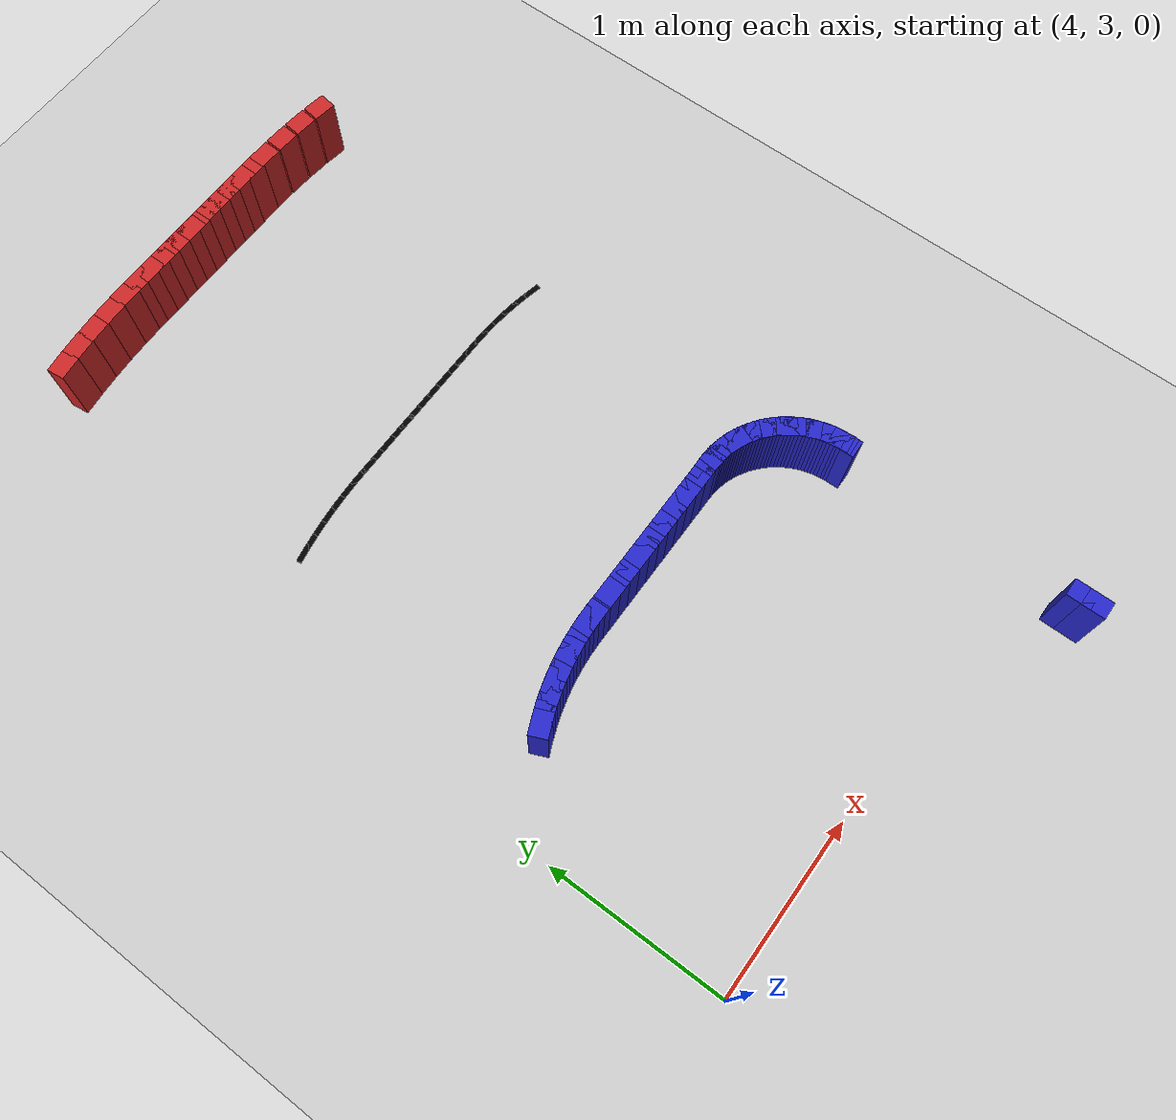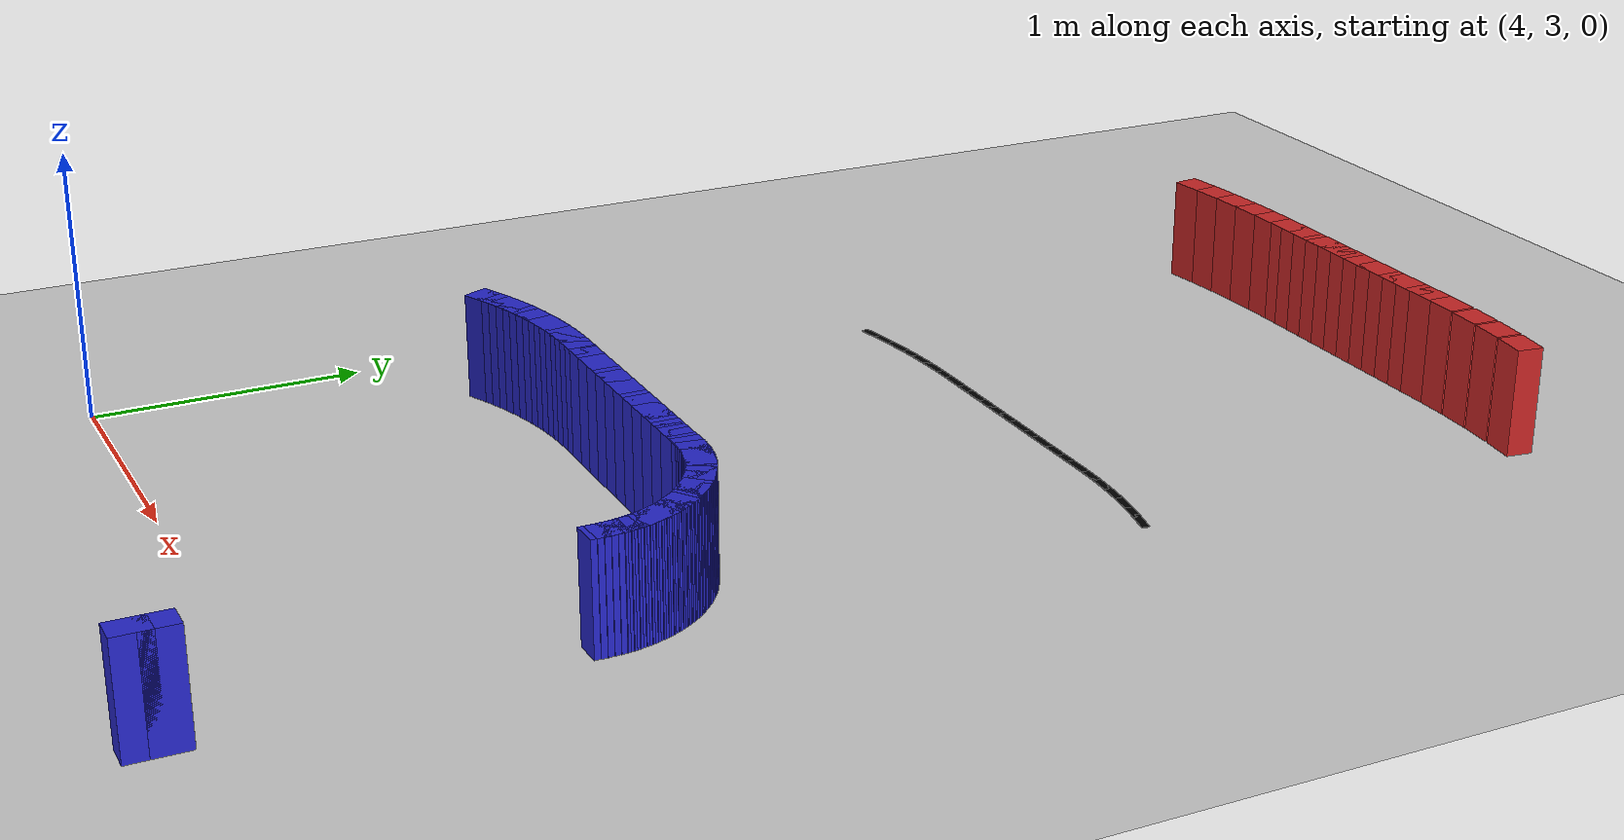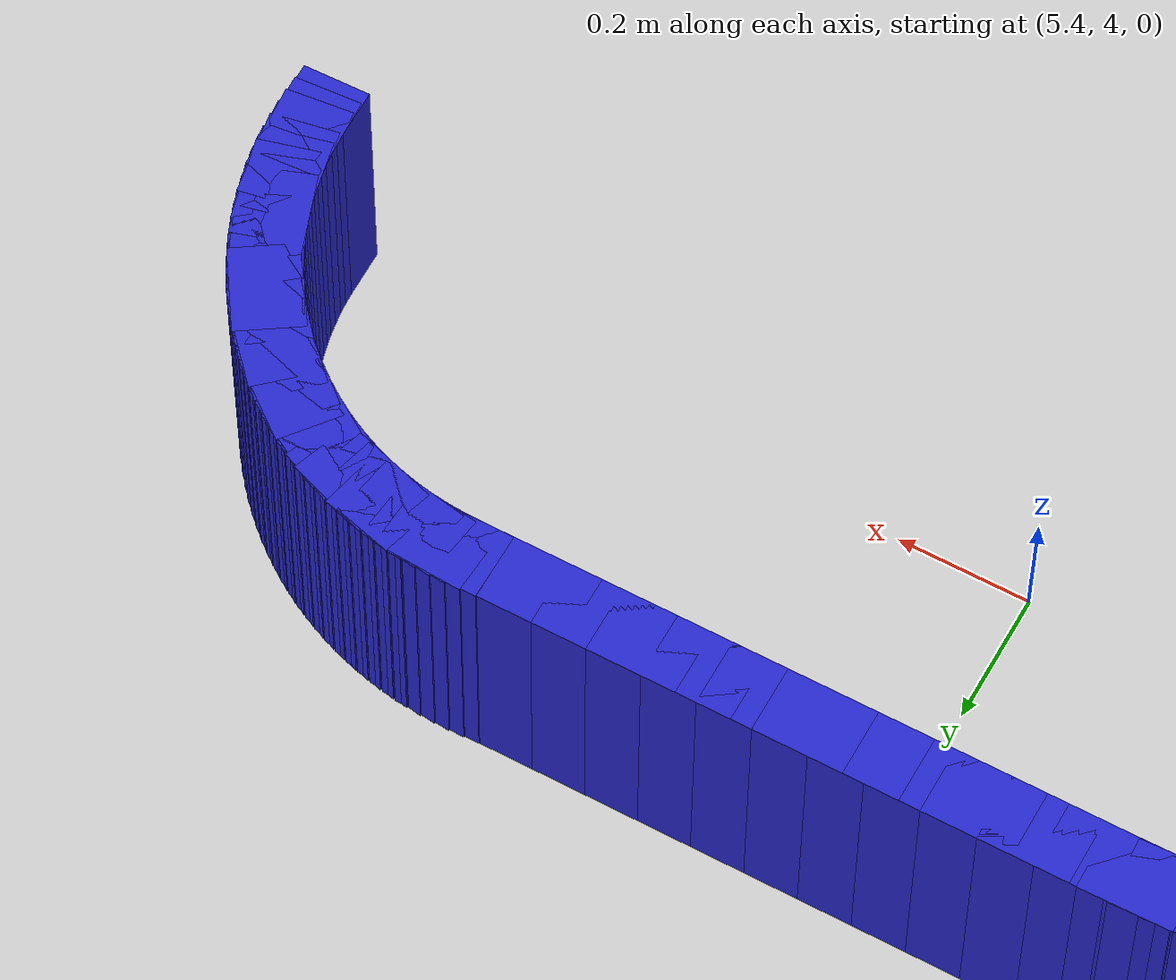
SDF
<sdf version="1.6">
 <world name="new_race_track">
  <include><uri>model://ground_plane</uri></include>
  <include><uri>model://sun</uri></include>
  <model name="iw_478">
   <static>true</static>
   <pose>6.5000 2.6000 0.200 0 0 1.5708</pose>
   <link name="l">
    <collision name="c"><geometry><box><size>0.1300 0.1 0.4</size></box></geometry></collision>
    <visual name="v">
     <geometry><box><size>0.1300 0.1 0.4</size></box></geometry>
     <material><ambient>0.15 0.15 0.8 1</ambient><diffuse>0.15 0.15 0.8 1</diffuse></material>
    </visual>
   </link>
  </model>
  <model name="iw_479">
   <static>true</static>
   <pose>6.5000 2.6800 0.200 0 0 1.5708</pose>
   <link name="l">
    <collision name="c"><geometry><box><size>0.1300 0.1 0.4</size></box></geometry></collision>
    <visual name="v">
     <geometry><box><size>0.1300 0.1 0.4</size></box></geometry>
     <material><ambient>0.15 0.15 0.8 1</ambient><diffuse>0.15 0.15 0.8 1</diffuse></material>
    </visual>
   </link>
  </model>
  <model name="iw_496">
   <static>true</static>
   <pose>6.4995 4.0101 0.200 0 0 1.5909</pose>
   <link name="l">
    <collision name="c"><geometry><box><size>0.1305 0.1 0.4</size></box></geometry></collision>
    <visual name="v">
     <geometry><box><size>0.1305 0.1 0.4</size></box></geometry>
     <material><ambient>0.15 0.15 0.8 1</ambient><diffuse>0.15 0.15 0.8 1</diffuse></material>
    </visual>
   </link>
  </model>
  <model name="iw_497">
   <static>true</static>
   <pose>6.4987 4.0302 0.200 0 0 1.6312</pose>
   <link name="l">
    <collision name="c"><geometry><box><size>0.1305 0.1 0.4</size></box></geometry></collision>
    <visual name="v">
     <geometry><box><size>0.1305 0.1 0.4</size></box></geometry>
     <material><ambient>0.15 0.15 0.8 1</ambient><diffuse>0.15 0.15 0.8 1</diffuse></material>
    </visual>
   </link>
  </model>
  <model name="iw_498">
   <static>true</static>
   <pose>6.4971 4.0502 0.200 0 0 1.6715</pose>
   <link name="l">
    <collision name="c"><geometry><box><size>0.1305 0.1 0.4</size></box></geometry></collision>
    <visual name="v">
     <geometry><box><size>0.1305 0.1 0.4</size></box></geometry>
     <material><ambient>0.15 0.15 0.8 1</ambient><diffuse>0.15 0.15 0.8 1</diffuse></material>
    </visual>
   </link>
  </model>
  <model name="iw_499">
   <static>true</static>
   <pose>6.4946 4.0702 0.200 0 0 1.7118</pose>
   <link name="l">
    <collision name="c"><geometry><box><size>0.1305 0.1 0.4</size></box></geometry></collision>
    <visual name="v">
     <geometry><box><size>0.1305 0.1 0.4</size></box></geometry>
     <material><ambient>0.15 0.15 0.8 1</ambient><diffuse>0.15 0.15 0.8 1</diffuse></material>
    </visual>
   </link>
  </model>
  <model name="iw_500">
   <static>true</static>
   <pose>6.4914 4.0901 0.200 0 0 1.7520</pose>
   <link name="l">
    <collision name="c"><geometry><box><size>0.1305 0.1 0.4</size></box></geometry></collision>
    <visual name="v">
     <geometry><box><size>0.1305 0.1 0.4</size></box></geometry>
     <material><ambient>0.15 0.15 0.8 1</ambient><diffuse>0.15 0.15 0.8 1</diffuse></material>
    </visual>
   </link>
  </model>
  <model name="iw_501">
   <static>true</static>
   <pose>6.4874 4.1098 0.200 0 0 1.7923</pose>
   <link name="l">
    <collision name="c"><geometry><box><size>0.1305 0.1 0.4</size></box></geometry></collision>
    <visual name="v">
     <geometry><box><size>0.1305 0.1 0.4</size></box></geometry>
     <material><ambient>0.15 0.15 0.8 1</ambient><diffuse>0.15 0.15 0.8 1</diffuse></material>
    </visual>
   </link>
  </model>
  <model name="iw_502">
   <static>true</static>
   <pose>6.4826 4.1293 0.200 0 0 1.8326</pose>
   <link name="l">
    <collision name="c"><geometry><box><size>0.1305 0.1 0.4</size></box></geometry></collision>
    <visual name="v">
     <geometry><box><size>0.1305 0.1 0.4</size></box></geometry>
     <material><ambient>0.15 0.15 0.8 1</ambient><diffuse>0.15 0.15 0.8 1</diffuse></material>
    </visual>
   </link>
  </model>
  <model name="iw_503">
   <static>true</static>
   <pose>6.4770 4.1486 0.200 0 0 1.8729</pose>
   <link name="l">
    <collision name="c"><geometry><box><size>0.1305 0.1 0.4</size></box></geometry></collision>
    <visual name="v">
     <geometry><box><size>0.1305 0.1 0.4</size></box></geometry>
     <material><ambient>0.15 0.15 0.8 1</ambient><diffuse>0.15 0.15 0.8 1</diffuse></material>
    </visual>
   </link>
  </model>
  <model name="iw_504">
   <static>true</static>
   <pose>6.4706 4.1677 0.200 0 0 1.9131</pose>
   <link name="l">
    <collision name="c"><geometry><box><size>0.1305 0.1 0.4</size></box></geometry></collision>
    <visual name="v">
     <geometry><box><size>0.1305 0.1 0.4</size></box></geometry>
     <material><ambient>0.15 0.15 0.8 1</ambient><diffuse>0.15 0.15 0.8 1</diffuse></material>
    </visual>
   </link>
  </model>
  <model name="iw_505">
   <static>true</static>
   <pose>6.4635 4.1865 0.200 0 0 1.9534</pose>
   <link name="l">
    <collision name="c"><geometry><box><size>0.1305 0.1 0.4</size></box></geometry></collision>
    <visual name="v">
     <geometry><box><size>0.1305 0.1 0.4</size></box></geometry>
     <material><ambient>0.15 0.15 0.8 1</ambient><diffuse>0.15 0.15 0.8 1</diffuse></material>
    </visual>
   </link>
  </model>
  <model name="iw_506">
   <static>true</static>
   <pose>6.4556 4.2050 0.200 0 0 1.9937</pose>
   <link name="l">
    <collision name="c"><geometry><box><size>0.1305 0.1 0.4</size></box></geometry></collision>
    <visual name="v">
     <geometry><box><size>0.1305 0.1 0.4</size></box></geometry>
     <material><ambient>0.15 0.15 0.8 1</ambient><diffuse>0.15 0.15 0.8 1</diffuse></material>
    </visual>
   </link>
  </model>
  <model name="iw_507">
   <static>true</static>
   <pose>6.4470 4.2232 0.200 0 0 2.0340</pose>
   <link name="l">
    <collision name="c"><geometry><box><size>0.1305 0.1 0.4</size></box></geometry></collision>
    <visual name="v">
     <geometry><box><size>0.1305 0.1 0.4</size></box></geometry>
     <material><ambient>0.15 0.15 0.8 1</ambient><diffuse>0.15 0.15 0.8 1</diffuse></material>
    </visual>
   </link>
  </model>
  <model name="iw_508">
   <static>true</static>
   <pose>6.4376 4.2410 0.200 0 0 2.0743</pose>
   <link name="l">
    <collision name="c"><geometry><box><size>0.1305 0.1 0.4</size></box></geometry></collision>
    <visual name="v">
     <geometry><box><size>0.1305 0.1 0.4</size></box></geometry>
     <material><ambient>0.15 0.15 0.8 1</ambient><diffuse>0.15 0.15 0.8 1</diffuse></material>
    </visual>
   </link>
  </model>
  <model name="iw_509">
   <static>true</static>
   <pose>6.4275 4.2585 0.200 0 0 2.1145</pose>
   <link name="l">
    <collision name="c"><geometry><box><size>0.1305 0.1 0.4</size></box></geometry></collision>
    <visual name="v">
     <geometry><box><size>0.1305 0.1 0.4</size></box></geometry>
     <material><ambient>0.15 0.15 0.8 1</ambient><diffuse>0.15 0.15 0.8 1</diffuse></material>
    </visual>
   </link>
  </model>
  <model name="iw_510">
   <static>true</static>
   <pose>6.4168 4.2755 0.200 0 0 2.1548</pose>
   <link name="l">
    <collision name="c"><geometry><box><size>0.1305 0.1 0.4</size></box></geometry></collision>
    <visual name="v">
     <geometry><box><size>0.1305 0.1 0.4</size></box></geometry>
     <material><ambient>0.15 0.15 0.8 1</ambient><diffuse>0.15 0.15 0.8 1</diffuse></material>
    </visual>
   </link>
  </model>
  <model name="iw_511">
   <static>true</static>
   <pose>6.4054 4.2920 0.200 0 0 2.1951</pose>
   <link name="l">
    <collision name="c"><geometry><box><size>0.1305 0.1 0.4</size></box></geometry></collision>
    <visual name="v">
     <geometry><box><size>0.1305 0.1 0.4</size></box></geometry>
     <material><ambient>0.15 0.15 0.8 1</ambient><diffuse>0.15 0.15 0.8 1</diffuse></material>
    </visual>
   </link>
  </model>
  <model name="iw_512">
   <static>true</static>
   <pose>6.3933 4.3081 0.200 0 0 2.2354</pose>
   <link name="l">
    <collision name="c"><geometry><box><size>0.1305 0.1 0.4</size></box></geometry></collision>
    <visual name="v">
     <geometry><box><size>0.1305 0.1 0.4</size></box></geometry>
     <material><ambient>0.15 0.15 0.8 1</ambient><diffuse>0.15 0.15 0.8 1</diffuse></material>
    </visual>
   </link>
  </model>
  <model name="iw_513">
   <static>true</static>
   <pose>6.3805 4.3237 0.200 0 0 2.2756</pose>
   <link name="l">
    <collision name="c"><geometry><box><size>0.1305 0.1 0.4</size></box></geometry></collision>
    <visual name="v">
     <geometry><box><size>0.1305 0.1 0.4</size></box></geometry>
     <material><ambient>0.15 0.15 0.8 1</ambient><diffuse>0.15 0.15 0.8 1</diffuse></material>
    </visual>
   </link>
  </model>
  <model name="iw_514">
   <static>true</static>
   <pose>6.3672 4.3388 0.200 0 0 2.3159</pose>
   <link name="l">
    <collision name="c"><geometry><box><size>0.1305 0.1 0.4</size></box></geometry></collision>
    <visual name="v">
     <geometry><box><size>0.1305 0.1 0.4</size></box></geometry>
     <material><ambient>0.15 0.15 0.8 1</ambient><diffuse>0.15 0.15 0.8 1</diffuse></material>
    </visual>
   </link>
  </model>
  <model name="iw_515">
   <static>true</static>
   <pose>6.3533 4.3533 0.200 0 0 2.3562</pose>
   <link name="l">
    <collision name="c"><geometry><box><size>0.1305 0.1 0.4</size></box></geometry></collision>
    <visual name="v">
     <geometry><box><size>0.1305 0.1 0.4</size></box></geometry>
     <material><ambient>0.15 0.15 0.8 1</ambient><diffuse>0.15 0.15 0.8 1</diffuse></material>
    </visual>
   </link>
  </model>
  <model name="iw_516">
   <static>true</static>
   <pose>6.3388 4.3672 0.200 0 0 2.3965</pose>
   <link name="l">
    <collision name="c"><geometry><box><size>0.1305 0.1 0.4</size></box></geometry></collision>
    <visual name="v">
     <geometry><box><size>0.1305 0.1 0.4</size></box></geometry>
     <material><ambient>0.15 0.15 0.8 1</ambient><diffuse>0.15 0.15 0.8 1</diffuse></material>
    </visual>
   </link>
  </model>
  <model name="iw_517">
   <static>true</static>
   <pose>6.3237 4.3805 0.200 0 0 2.4367</pose>
   <link name="l">
    <collision name="c"><geometry><box><size>0.1305 0.1 0.4</size></box></geometry></collision>
    <visual name="v">
     <geometry><box><size>0.1305 0.1 0.4</size></box></geometry>
     <material><ambient>0.15 0.15 0.8 1</ambient><diffuse>0.15 0.15 0.8 1</diffuse></material>
    </visual>
   </link>
  </model>
  <model name="iw_518">
   <static>true</static>
   <pose>6.3081 4.3933 0.200 0 0 2.4770</pose>
   <link name="l">
    <collision name="c"><geometry><box><size>0.1305 0.1 0.4</size></box></geometry></collision>
    <visual name="v">
     <geometry><box><size>0.1305 0.1 0.4</size></box></geometry>
     <material><ambient>0.15 0.15 0.8 1</ambient><diffuse>0.15 0.15 0.8 1</diffuse></material>
    </visual>
   </link>
  </model>
  <model name="iw_519">
   <static>true</static>
   <pose>6.2920 4.4054 0.200 0 0 2.5173</pose>
   <link name="l">
    <collision name="c"><geometry><box><size>0.1305 0.1 0.4</size></box></geometry></collision>
    <visual name="v">
     <geometry><box><size>0.1305 0.1 0.4</size></box></geometry>
     <material><ambient>0.15 0.15 0.8 1</ambient><diffuse>0.15 0.15 0.8 1</diffuse></material>
    </visual>
   </link>
  </model>
  <model name="iw_520">
   <static>true</static>
   <pose>6.2755 4.4168 0.200 0 0 2.5576</pose>
   <link name="l">
    <collision name="c"><geometry><box><size>0.1305 0.1 0.4</size></box></geometry></collision>
    <visual name="v">
     <geometry><box><size>0.1305 0.1 0.4</size></box></geometry>
     <material><ambient>0.15 0.15 0.8 1</ambient><diffuse>0.15 0.15 0.8 1</diffuse></material>
    </visual>
   </link>
  </model>
  <model name="iw_521">
   <static>true</static>
   <pose>6.2585 4.4275 0.200 0 0 2.5979</pose>
   <link name="l">
    <collision name="c"><geometry><box><size>0.1305 0.1 0.4</size></box></geometry></collision>
    <visual name="v">
     <geometry><box><size>0.1305 0.1 0.4</size></box></geometry>
     <material><ambient>0.15 0.15 0.8 1</ambient><diffuse>0.15 0.15 0.8 1</diffuse></material>
    </visual>
   </link>
  </model>
  <model name="iw_522">
   <static>true</static>
   <pose>6.2410 4.4376 0.200 0 0 2.6381</pose>
   <link name="l">
    <collision name="c"><geometry><box><size>0.1305 0.1 0.4</size></box></geometry></collision>
    <visual name="v">
     <geometry><box><size>0.1305 0.1 0.4</size></box></geometry>
     <material><ambient>0.15 0.15 0.8 1</ambient><diffuse>0.15 0.15 0.8 1</diffuse></material>
    </visual>
   </link>
  </model>
  <model name="iw_523">
   <static>true</static>
   <pose>6.2232 4.4470 0.200 0 0 2.6784</pose>
   <link name="l">
    <collision name="c"><geometry><box><size>0.1305 0.1 0.4</size></box></geometry></collision>
    <visual name="v">
     <geometry><box><size>0.1305 0.1 0.4</size></box></geometry>
     <material><ambient>0.15 0.15 0.8 1</ambient><diffuse>0.15 0.15 0.8 1</diffuse></material>
    </visual>
   </link>
  </model>
  <model name="iw_524">
   <static>true</static>
   <pose>6.2050 4.4556 0.200 0 0 2.7187</pose>
   <link name="l">
    <collision name="c"><geometry><box><size>0.1305 0.1 0.4</size></box></geometry></collision>
    <visual name="v">
     <geometry><box><size>0.1305 0.1 0.4</size></box></geometry>
     <material><ambient>0.15 0.15 0.8 1</ambient><diffuse>0.15 0.15 0.8 1</diffuse></material>
    </visual>
   </link>
  </model>
  <model name="iw_525">
   <static>true</static>
   <pose>6.1865 4.4635 0.200 0 0 2.7590</pose>
   <link name="l">
    <collision name="c"><geometry><box><size>0.1305 0.1 0.4</size></box></geometry></collision>
    <visual name="v">
     <geometry><box><size>0.1305 0.1 0.4</size></box></geometry>
     <material><ambient>0.15 0.15 0.8 1</ambient><diffuse>0.15 0.15 0.8 1</diffuse></material>
    </visual>
   </link>
  </model>
  <model name="iw_526">
   <static>true</static>
   <pose>6.1677 4.4706 0.200 0 0 2.7992</pose>
   <link name="l">
    <collision name="c"><geometry><box><size>0.1305 0.1 0.4</size></box></geometry></collision>
    <visual name="v">
     <geometry><box><size>0.1305 0.1 0.4</size></box></geometry>
     <material><ambient>0.15 0.15 0.8 1</ambient><diffuse>0.15 0.15 0.8 1</diffuse></material>
    </visual>
   </link>
  </model>
  <model name="iw_527">
   <static>true</static>
   <pose>6.1486 4.4770 0.200 0 0 2.8395</pose>
   <link name="l">
    <collision name="c"><geometry><box><size>0.1305 0.1 0.4</size></box></geometry></collision>
    <visual name="v">
     <geometry><box><size>0.1305 0.1 0.4</size></box></geometry>
     <material><ambient>0.15 0.15 0.8 1</ambient><diffuse>0.15 0.15 0.8 1</diffuse></material>
    </visual>
   </link>
  </model>
  <model name="iw_528">
   <static>true</static>
   <pose>6.1293 4.4826 0.200 0 0 2.8798</pose>
   <link name="l">
    <collision name="c"><geometry><box><size>0.1305 0.1 0.4</size></box></geometry></collision>
    <visual name="v">
     <geometry><box><size>0.1305 0.1 0.4</size></box></geometry>
     <material><ambient>0.15 0.15 0.8 1</ambient><diffuse>0.15 0.15 0.8 1</diffuse></material>
    </visual>
   </link>
  </model>
  <model name="iw_529">
   <static>true</static>
   <pose>6.1098 4.4874 0.200 0 0 2.9201</pose>
   <link name="l">
    <collision name="c"><geometry><box><size>0.1305 0.1 0.4</size></box></geometry></collision>
    <visual name="v">
     <geometry><box><size>0.1305 0.1 0.4</size></box></geometry>
     <material><ambient>0.15 0.15 0.8 1</ambient><diffuse>0.15 0.15 0.8 1</diffuse></material>
    </visual>
   </link>
  </model>
  <model name="iw_530">
   <static>true</static>
   <pose>6.0901 4.4914 0.200 0 0 2.9603</pose>
   <link name="l">
    <collision name="c"><geometry><box><size>0.1305 0.1 0.4</size></box></geometry></collision>
    <visual name="v">
     <geometry><box><size>0.1305 0.1 0.4</size></box></geometry>
     <material><ambient>0.15 0.15 0.8 1</ambient><diffuse>0.15 0.15 0.8 1</diffuse></material>
    </visual>
   </link>
  </model>
  <model name="iw_531">
   <static>true</static>
   <pose>6.0702 4.4946 0.200 0 0 3.0006</pose>
   <link name="l">
    <collision name="c"><geometry><box><size>0.1305 0.1 0.4</size></box></geometry></collision>
    <visual name="v">
     <geometry><box><size>0.1305 0.1 0.4</size></box></geometry>
     <material><ambient>0.15 0.15 0.8 1</ambient><diffuse>0.15 0.15 0.8 1</diffuse></material>
    </visual>
   </link>
  </model>
  <model name="iw_532">
   <static>true</static>
   <pose>6.0502 4.4971 0.200 0 0 3.0409</pose>
   <link name="l">
    <collision name="c"><geometry><box><size>0.1305 0.1 0.4</size></box></geometry></collision>
    <visual name="v">
     <geometry><box><size>0.1305 0.1 0.4</size></box></geometry>
     <material><ambient>0.15 0.15 0.8 1</ambient><diffuse>0.15 0.15 0.8 1</diffuse></material>
    </visual>
   </link>
  </model>
  <model name="iw_533">
   <static>true</static>
   <pose>6.0302 4.4987 0.200 0 0 3.0812</pose>
   <link name="l">
    <collision name="c"><geometry><box><size>0.1305 0.1 0.4</size></box></geometry></collision>
    <visual name="v">
     <geometry><box><size>0.1305 0.1 0.4</size></box></geometry>
     <material><ambient>0.15 0.15 0.8 1</ambient><diffuse>0.15 0.15 0.8 1</diffuse></material>
    </visual>
   </link>
  </model>
  <model name="iw_534">
   <static>true</static>
   <pose>6.0101 4.4995 0.200 0 0 3.1215</pose>
   <link name="l">
    <collision name="c"><geometry><box><size>0.1305 0.1 0.4</size></box></geometry></collision>
    <visual name="v">
     <geometry><box><size>0.1305 0.1 0.4</size></box></geometry>
     <material><ambient>0.15 0.15 0.8 1</ambient><diffuse>0.15 0.15 0.8 1</diffuse></material>
    </visual>
   </link>
  </model>
  <model name="iw_535">
   <static>true</static>
   <pose>5.9600 4.5000 0.200 0 0 3.1416</pose>
   <link name="l">
    <collision name="c"><geometry><box><size>0.1300 0.1 0.4</size></box></geometry></collision>
    <visual name="v">
     <geometry><box><size>0.1300 0.1 0.4</size></box></geometry>
     <material><ambient>0.15 0.15 0.8 1</ambient><diffuse>0.15 0.15 0.8 1</diffuse></material>
    </visual>
   </link>
  </model>
  <model name="iw_536">
   <static>true</static>
   <pose>5.8800 4.5000 0.200 0 0 3.1416</pose>
   <link name="l">
    <collision name="c"><geometry><box><size>0.1300 0.1 0.4</size></box></geometry></collision>
    <visual name="v">
     <geometry><box><size>0.1300 0.1 0.4</size></box></geometry>
     <material><ambient>0.15 0.15 0.8 1</ambient><diffuse>0.15 0.15 0.8 1</diffuse></material>
    </visual>
   </link>
  </model>
  <model name="iw_537">
   <static>true</static>
   <pose>5.8000 4.5000 0.200 0 0 3.1416</pose>
   <link name="l">
    <collision name="c"><geometry><box><size>0.1300 0.1 0.4</size></box></geometry></collision>
    <visual name="v">
     <geometry><box><size>0.1300 0.1 0.4</size></box></geometry>
     <material><ambient>0.15 0.15 0.8 1</ambient><diffuse>0.15 0.15 0.8 1</diffuse></material>
    </visual>
   </link>
  </model>
  <model name="iw_538">
   <static>true</static>
   <pose>5.7200 4.5000 0.200 0 0 3.1416</pose>
   <link name="l">
    <collision name="c"><geometry><box><size>0.1300 0.1 0.4</size></box></geometry></collision>
    <visual name="v">
     <geometry><box><size>0.1300 0.1 0.4</size></box></geometry>
     <material><ambient>0.15 0.15 0.8 1</ambient><diffuse>0.15 0.15 0.8 1</diffuse></material>
    </visual>
   </link>
  </model>
  <model name="iw_539">
   <static>true</static>
   <pose>5.6400 4.5000 0.200 0 0 3.1416</pose>
   <link name="l">
    <collision name="c"><geometry><box><size>0.1300 0.1 0.4</size></box></geometry></collision>
    <visual name="v">
     <geometry><box><size>0.1300 0.1 0.4</size></box></geometry>
     <material><ambient>0.15 0.15 0.8 1</ambient><diffuse>0.15 0.15 0.8 1</diffuse></material>
    </visual>
   </link>
  </model>
  <model name="iw_540">
   <static>true</static>
   <pose>5.5600 4.5000 0.200 0 0 3.1416</pose>
   <link name="l">
    <collision name="c"><geometry><box><size>0.1300 0.1 0.4</size></box></geometry></collision>
    <visual name="v">
     <geometry><box><size>0.1300 0.1 0.4</size></box></geometry>
     <material><ambient>0.15 0.15 0.8 1</ambient><diffuse>0.15 0.15 0.8 1</diffuse></material>
    </visual>
   </link>
  </model>
  <model name="iw_541">
   <static>true</static>
   <pose>5.4800 4.5000 0.200 0 0 3.1416</pose>
   <link name="l">
    <collision name="c"><geometry><box><size>0.1300 0.1 0.4</size></box></geometry></collision>
    <visual name="v">
     <geometry><box><size>0.1300 0.1 0.4</size></box></geometry>
     <material><ambient>0.15 0.15 0.8 1</ambient><diffuse>0.15 0.15 0.8 1</diffuse></material>
    </visual>
   </link>
  </model>
  <model name="iw_542">
   <static>true</static>
   <pose>5.4000 4.5000 0.200 0 0 3.1416</pose>
   <link name="l">
    <collision name="c"><geometry><box><size>0.1300 0.1 0.4</size></box></geometry></collision>
    <visual name="v">
     <geometry><box><size>0.1300 0.1 0.4</size></box></geometry>
     <material><ambient>0.15 0.15 0.8 1</ambient><diffuse>0.15 0.15 0.8 1</diffuse></material>
    </visual>
   </link>
  </model>
  <model name="iw_543">
   <static>true</static>
   <pose>5.3200 4.5000 0.200 0 0 3.1416</pose>
   <link name="l">
    <collision name="c"><geometry><box><size>0.1300 0.1 0.4</size></box></geometry></collision>
    <visual name="v">
     <geometry><box><size>0.1300 0.1 0.4</size></box></geometry>
     <material><ambient>0.15 0.15 0.8 1</ambient><diffuse>0.15 0.15 0.8 1</diffuse></material>
    </visual>
   </link>
  </model>
  <model name="iw_544">
   <static>true</static>
   <pose>5.2400 4.5000 0.200 0 0 3.1416</pose>
   <link name="l">
    <collision name="c"><geometry><box><size>0.1300 0.1 0.4</size></box></geometry></collision>
    <visual name="v">
     <geometry><box><size>0.1300 0.1 0.4</size></box></geometry>
     <material><ambient>0.15 0.15 0.8 1</ambient><diffuse>0.15 0.15 0.8 1</diffuse></material>
    </visual>
   </link>
  </model>
  <model name="iw_545">
   <static>true</static>
   <pose>5.1600 4.5000 0.200 0 0 3.1416</pose>
   <link name="l">
    <collision name="c"><geometry><box><size>0.1300 0.1 0.4</size></box></geometry></collision>
    <visual name="v">
     <geometry><box><size>0.1300 0.1 0.4</size></box></geometry>
     <material><ambient>0.15 0.15 0.8 1</ambient><diffuse>0.15 0.15 0.8 1</diffuse></material>
    </visual>
   </link>
  </model>
  <model name="iw_546">
   <static>true</static>
   <pose>5.0800 4.5000 0.200 0 0 3.1416</pose>
   <link name="l">
    <collision name="c"><geometry><box><size>0.1300 0.1 0.4</size></box></geometry></collision>
    <visual name="v">
     <geometry><box><size>0.1300 0.1 0.4</size></box></geometry>
     <material><ambient>0.15 0.15 0.8 1</ambient><diffuse>0.15 0.15 0.8 1</diffuse></material>
    </visual>
   </link>
  </model>
  <model name="iw_547">
   <static>true</static>
   <pose>5.0192 4.4996 0.200 0 0 -3.1277</pose>
   <link name="l">
    <collision name="c"><geometry><box><size>0.1333 0.1 0.4</size></box></geometry></collision>
    <visual name="v">
     <geometry><box><size>0.1333 0.1 0.4</size></box></geometry>
     <material><ambient>0.15 0.15 0.8 1</ambient><diffuse>0.15 0.15 0.8 1</diffuse></material>
    </visual>
   </link>
  </model>
  <model name="iw_548">
   <static>true</static>
   <pose>4.9776 4.4984 0.200 0 0 -3.0999</pose>
   <link name="l">
    <collision name="c"><geometry><box><size>0.1333 0.1 0.4</size></box></geometry></collision>
    <visual name="v">
     <geometry><box><size>0.1333 0.1 0.4</size></box></geometry>
     <material><ambient>0.15 0.15 0.8 1</ambient><diffuse>0.15 0.15 0.8 1</diffuse></material>
    </visual>
   </link>
  </model>
  <model name="iw_549">
   <static>true</static>
   <pose>4.9360 4.4961 0.200 0 0 -3.0722</pose>
   <link name="l">
    <collision name="c"><geometry><box><size>0.1333 0.1 0.4</size></box></geometry></collision>
    <visual name="v">
     <geometry><box><size>0.1333 0.1 0.4</size></box></geometry>
     <material><ambient>0.15 0.15 0.8 1</ambient><diffuse>0.15 0.15 0.8 1</diffuse></material>
    </visual>
   </link>
  </model>
  <model name="iw_550">
   <static>true</static>
   <pose>4.8945 4.4926 0.200 0 0 -3.0444</pose>
   <link name="l">
    <collision name="c"><geometry><box><size>0.1333 0.1 0.4</size></box></geometry></collision>
    <visual name="v">
     <geometry><box><size>0.1333 0.1 0.4</size></box></geometry>
     <material><ambient>0.15 0.15 0.8 1</ambient><diffuse>0.15 0.15 0.8 1</diffuse></material>
    </visual>
   </link>
  </model>
  <model name="iw_551">
   <static>true</static>
   <pose>4.8531 4.4880 0.200 0 0 -3.0166</pose>
   <link name="l">
    <collision name="c"><geometry><box><size>0.1333 0.1 0.4</size></box></geometry></collision>
    <visual name="v">
     <geometry><box><size>0.1333 0.1 0.4</size></box></geometry>
     <material><ambient>0.15 0.15 0.8 1</ambient><diffuse>0.15 0.15 0.8 1</diffuse></material>
    </visual>
   </link>
  </model>
  <model name="iw_552">
   <static>true</static>
   <pose>4.8119 4.4823 0.200 0 0 -2.9889</pose>
   <link name="l">
    <collision name="c"><geometry><box><size>0.1333 0.1 0.4</size></box></geometry></collision>
    <visual name="v">
     <geometry><box><size>0.1333 0.1 0.4</size></box></geometry>
     <material><ambient>0.15 0.15 0.8 1</ambient><diffuse>0.15 0.15 0.8 1</diffuse></material>
    </visual>
   </link>
  </model>
  <model name="iw_553">
   <static>true</static>
   <pose>4.7708 4.4754 0.200 0 0 -2.9611</pose>
   <link name="l">
    <collision name="c"><geometry><box><size>0.1333 0.1 0.4</size></box></geometry></collision>
    <visual name="v">
     <geometry><box><size>0.1333 0.1 0.4</size></box></geometry>
     <material><ambient>0.15 0.15 0.8 1</ambient><diffuse>0.15 0.15 0.8 1</diffuse></material>
    </visual>
   </link>
  </model>
  <model name="iw_554">
   <static>true</static>
   <pose>4.7299 4.4673 0.200 0 0 -2.9333</pose>
   <link name="l">
    <collision name="c"><geometry><box><size>0.1333 0.1 0.4</size></box></geometry></collision>
    <visual name="v">
     <geometry><box><size>0.1333 0.1 0.4</size></box></geometry>
     <material><ambient>0.15 0.15 0.8 1</ambient><diffuse>0.15 0.15 0.8 1</diffuse></material>
    </visual>
   </link>
  </model>
  <model name="iw_555">
   <static>true</static>
   <pose>4.6893 4.4581 0.200 0 0 -2.9056</pose>
   <link name="l">
    <collision name="c"><geometry><box><size>0.1333 0.1 0.4</size></box></geometry></collision>
    <visual name="v">
     <geometry><box><size>0.1333 0.1 0.4</size></box></geometry>
     <material><ambient>0.15 0.15 0.8 1</ambient><diffuse>0.15 0.15 0.8 1</diffuse></material>
    </visual>
   </link>
  </model>
  <model name="iw_556">
   <static>true</static>
   <pose>4.6490 4.4478 0.200 0 0 -2.8778</pose>
   <link name="l">
    <collision name="c"><geometry><box><size>0.1333 0.1 0.4</size></box></geometry></collision>
    <visual name="v">
     <geometry><box><size>0.1333 0.1 0.4</size></box></geometry>
     <material><ambient>0.15 0.15 0.8 1</ambient><diffuse>0.15 0.15 0.8 1</diffuse></material>
    </visual>
   </link>
  </model>
  <model name="iw_557">
   <static>true</static>
   <pose>4.6089 4.4364 0.200 0 0 -2.8500</pose>
   <link name="l">
    <collision name="c"><geometry><box><size>0.1333 0.1 0.4</size></box></geometry></collision>
    <visual name="v">
     <geometry><box><size>0.1333 0.1 0.4</size></box></geometry>
     <material><ambient>0.15 0.15 0.8 1</ambient><diffuse>0.15 0.15 0.8 1</diffuse></material>
    </visual>
   </link>
  </model>
  <model name="iw_558">
   <static>true</static>
   <pose>4.5692 4.4239 0.200 0 0 -2.8223</pose>
   <link name="l">
    <collision name="c"><geometry><box><size>0.1333 0.1 0.4</size></box></geometry></collision>
    <visual name="v">
     <geometry><box><size>0.1333 0.1 0.4</size></box></geometry>
     <material><ambient>0.15 0.15 0.8 1</ambient><diffuse>0.15 0.15 0.8 1</diffuse></material>
    </visual>
   </link>
  </model>
  <model name="iw_559">
   <static>true</static>
   <pose>4.5299 4.4103 0.200 0 0 -2.7945</pose>
   <link name="l">
    <collision name="c"><geometry><box><size>0.1333 0.1 0.4</size></box></geometry></collision>
    <visual name="v">
     <geometry><box><size>0.1333 0.1 0.4</size></box></geometry>
     <material><ambient>0.15 0.15 0.8 1</ambient><diffuse>0.15 0.15 0.8 1</diffuse></material>
    </visual>
   </link>
  </model>
  <model name="iw_560">
   <static>true</static>
   <pose>4.4909 4.3956 0.200 0 0 -2.7667</pose>
   <link name="l">
    <collision name="c"><geometry><box><size>0.1333 0.1 0.4</size></box></geometry></collision>
    <visual name="v">
     <geometry><box><size>0.1333 0.1 0.4</size></box></geometry>
     <material><ambient>0.15 0.15 0.8 1</ambient><diffuse>0.15 0.15 0.8 1</diffuse></material>
    </visual>
   </link>
  </model>
  <model name="iw_561">
   <static>true</static>
   <pose>4.4524 4.3798 0.200 0 0 -2.7390</pose>
   <link name="l">
    <collision name="c"><geometry><box><size>0.1333 0.1 0.4</size></box></geometry></collision>
    <visual name="v">
     <geometry><box><size>0.1333 0.1 0.4</size></box></geometry>
     <material><ambient>0.15 0.15 0.8 1</ambient><diffuse>0.15 0.15 0.8 1</diffuse></material>
    </visual>
   </link>
  </model>
  <model name="ow_531">
   <static>true</static>
   <pose>6.4917 7.4649 0.200 0 0 3.0006</pose>
   <link name="l">
    <collision name="c"><geometry><box><size>0.1305 0.1 0.4</size></box></geometry></collision>
    <visual name="v">
     <geometry><box><size>0.1305 0.1 0.4</size></box></geometry>
     <material><ambient>0.8 0.15 0.15 1</ambient><diffuse>0.8 0.15 0.15 1</diffuse></material>
    </visual>
   </link>
  </model>
  <model name="ow_532">
   <static>true</static>
   <pose>6.3518 7.4819 0.200 0 0 3.0409</pose>
   <link name="l">
    <collision name="c"><geometry><box><size>0.1305 0.1 0.4</size></box></geometry></collision>
    <visual name="v">
     <geometry><box><size>0.1305 0.1 0.4</size></box></geometry>
     <material><ambient>0.8 0.15 0.15 1</ambient><diffuse>0.8 0.15 0.15 1</diffuse></material>
    </visual>
   </link>
  </model>
  <model name="ow_533">
   <static>true</static>
   <pose>6.2113 7.4932 0.200 0 0 3.0812</pose>
   <link name="l">
    <collision name="c"><geometry><box><size>0.1305 0.1 0.4</size></box></geometry></collision>
    <visual name="v">
     <geometry><box><size>0.1305 0.1 0.4</size></box></geometry>
     <material><ambient>0.8 0.15 0.15 1</ambient><diffuse>0.8 0.15 0.15 1</diffuse></material>
    </visual>
   </link>
  </model>
  <model name="ow_534">
   <static>true</static>
   <pose>6.0705 7.4989 0.200 0 0 3.1215</pose>
   <link name="l">
    <collision name="c"><geometry><box><size>0.1305 0.1 0.4</size></box></geometry></collision>
    <visual name="v">
     <geometry><box><size>0.1305 0.1 0.4</size></box></geometry>
     <material><ambient>0.8 0.15 0.15 1</ambient><diffuse>0.8 0.15 0.15 1</diffuse></material>
    </visual>
   </link>
  </model>
  <model name="ow_535">
   <static>true</static>
   <pose>5.9600 7.5000 0.200 0 0 3.1416</pose>
   <link name="l">
    <collision name="c"><geometry><box><size>0.1300 0.1 0.4</size></box></geometry></collision>
    <visual name="v">
     <geometry><box><size>0.1300 0.1 0.4</size></box></geometry>
     <material><ambient>0.8 0.15 0.15 1</ambient><diffuse>0.8 0.15 0.15 1</diffuse></material>
    </visual>
   </link>
  </model>
  <model name="ow_536">
   <static>true</static>
   <pose>5.8800 7.5000 0.200 0 0 3.1416</pose>
   <link name="l">
    <collision name="c"><geometry><box><size>0.1300 0.1 0.4</size></box></geometry></collision>
    <visual name="v">
     <geometry><box><size>0.1300 0.1 0.4</size></box></geometry>
     <material><ambient>0.8 0.15 0.15 1</ambient><diffuse>0.8 0.15 0.15 1</diffuse></material>
    </visual>
   </link>
  </model>
  <model name="ow_537">
   <static>true</static>
   <pose>5.8000 7.5000 0.200 0 0 3.1416</pose>
   <link name="l">
    <collision name="c"><geometry><box><size>0.1300 0.1 0.4</size></box></geometry></collision>
    <visual name="v">
     <geometry><box><size>0.1300 0.1 0.4</size></box></geometry>
     <material><ambient>0.8 0.15 0.15 1</ambient><diffuse>0.8 0.15 0.15 1</diffuse></material>
    </visual>
   </link>
  </model>
  <model name="ow_538">
   <static>true</static>
   <pose>5.7200 7.5000 0.200 0 0 3.1416</pose>
   <link name="l">
    <collision name="c"><geometry><box><size>0.1300 0.1 0.4</size></box></geometry></collision>
    <visual name="v">
     <geometry><box><size>0.1300 0.1 0.4</size></box></geometry>
     <material><ambient>0.8 0.15 0.15 1</ambient><diffuse>0.8 0.15 0.15 1</diffuse></material>
    </visual>
   </link>
  </model>
  <model name="ow_539">
   <static>true</static>
   <pose>5.6400 7.5000 0.200 0 0 3.1416</pose>
   <link name="l">
    <collision name="c"><geometry><box><size>0.1300 0.1 0.4</size></box></geometry></collision>
    <visual name="v">
     <geometry><box><size>0.1300 0.1 0.4</size></box></geometry>
     <material><ambient>0.8 0.15 0.15 1</ambient><diffuse>0.8 0.15 0.15 1</diffuse></material>
    </visual>
   </link>
  </model>
  <model name="ow_540">
   <static>true</static>
   <pose>5.5600 7.5000 0.200 0 0 3.1416</pose>
   <link name="l">
    <collision name="c"><geometry><box><size>0.1300 0.1 0.4</size></box></geometry></collision>
    <visual name="v">
     <geometry><box><size>0.1300 0.1 0.4</size></box></geometry>
     <material><ambient>0.8 0.15 0.15 1</ambient><diffuse>0.8 0.15 0.15 1</diffuse></material>
    </visual>
   </link>
  </model>
  <model name="ow_541">
   <static>true</static>
   <pose>5.4800 7.5000 0.200 0 0 3.1416</pose>
   <link name="l">
    <collision name="c"><geometry><box><size>0.1300 0.1 0.4</size></box></geometry></collision>
    <visual name="v">
     <geometry><box><size>0.1300 0.1 0.4</size></box></geometry>
     <material><ambient>0.8 0.15 0.15 1</ambient><diffuse>0.8 0.15 0.15 1</diffuse></material>
    </visual>
   </link>
  </model>
  <model name="ow_542">
   <static>true</static>
   <pose>5.4000 7.5000 0.200 0 0 3.1416</pose>
   <link name="l">
    <collision name="c"><geometry><box><size>0.1300 0.1 0.4</size></box></geometry></collision>
    <visual name="v">
     <geometry><box><size>0.1300 0.1 0.4</size></box></geometry>
     <material><ambient>0.8 0.15 0.15 1</ambient><diffuse>0.8 0.15 0.15 1</diffuse></material>
    </visual>
   </link>
  </model>
  <model name="ow_543">
   <static>true</static>
   <pose>5.3200 7.5000 0.200 0 0 3.1416</pose>
   <link name="l">
    <collision name="c"><geometry><box><size>0.1300 0.1 0.4</size></box></geometry></collision>
    <visual name="v">
     <geometry><box><size>0.1300 0.1 0.4</size></box></geometry>
     <material><ambient>0.8 0.15 0.15 1</ambient><diffuse>0.8 0.15 0.15 1</diffuse></material>
    </visual>
   </link>
  </model>
  <model name="ow_544">
   <static>true</static>
   <pose>5.2400 7.5000 0.200 0 0 3.1416</pose>
   <link name="l">
    <collision name="c"><geometry><box><size>0.1300 0.1 0.4</size></box></geometry></collision>
    <visual name="v">
     <geometry><box><size>0.1300 0.1 0.4</size></box></geometry>
     <material><ambient>0.8 0.15 0.15 1</ambient><diffuse>0.8 0.15 0.15 1</diffuse></material>
    </visual>
   </link>
  </model>
  <model name="ow_545">
   <static>true</static>
   <pose>5.1600 7.5000 0.200 0 0 3.1416</pose>
   <link name="l">
    <collision name="c"><geometry><box><size>0.1300 0.1 0.4</size></box></geometry></collision>
    <visual name="v">
     <geometry><box><size>0.1300 0.1 0.4</size></box></geometry>
     <material><ambient>0.8 0.15 0.15 1</ambient><diffuse>0.8 0.15 0.15 1</diffuse></material>
    </visual>
   </link>
  </model>
  <model name="ow_546">
   <static>true</static>
   <pose>5.0800 7.5000 0.200 0 0 3.1416</pose>
   <link name="l">
    <collision name="c"><geometry><box><size>0.1300 0.1 0.4</size></box></geometry></collision>
    <visual name="v">
     <geometry><box><size>0.1300 0.1 0.4</size></box></geometry>
     <material><ambient>0.8 0.15 0.15 1</ambient><diffuse>0.8 0.15 0.15 1</diffuse></material>
    </visual>
   </link>
  </model>
  <model name="ow_547">
   <static>true</static>
   <pose>4.9775 7.4993 0.200 0 0 -3.1277</pose>
   <link name="l">
    <collision name="c"><geometry><box><size>0.1333 0.1 0.4</size></box></geometry></collision>
    <visual name="v">
     <geometry><box><size>0.1333 0.1 0.4</size></box></geometry>
     <material><ambient>0.8 0.15 0.15 1</ambient><diffuse>0.8 0.15 0.15 1</diffuse></material>
    </visual>
   </link>
  </model>
  <model name="ow_548">
   <static>true</static>
   <pose>4.8526 7.4958 0.200 0 0 -3.0999</pose>
   <link name="l">
    <collision name="c"><geometry><box><size>0.1333 0.1 0.4</size></box></geometry></collision>
    <visual name="v">
     <geometry><box><size>0.1333 0.1 0.4</size></box></geometry>
     <material><ambient>0.8 0.15 0.15 1</ambient><diffuse>0.8 0.15 0.15 1</diffuse></material>
    </visual>
   </link>
  </model>
  <model name="ow_549">
   <static>true</static>
   <pose>4.7279 7.4889 0.200 0 0 -3.0722</pose>
   <link name="l">
    <collision name="c"><geometry><box><size>0.1333 0.1 0.4</size></box></geometry></collision>
    <visual name="v">
     <geometry><box><size>0.1333 0.1 0.4</size></box></geometry>
     <material><ambient>0.8 0.15 0.15 1</ambient><diffuse>0.8 0.15 0.15 1</diffuse></material>
    </visual>
   </link>
  </model>
  <model name="ow_550">
   <static>true</static>
   <pose>4.6034 7.4785 0.200 0 0 -3.0444</pose>
   <link name="l">
    <collision name="c"><geometry><box><size>0.1333 0.1 0.4</size></box></geometry></collision>
    <visual name="v">
     <geometry><box><size>0.1333 0.1 0.4</size></box></geometry>
     <material><ambient>0.8 0.15 0.15 1</ambient><diffuse>0.8 0.15 0.15 1</diffuse></material>
    </visual>
   </link>
  </model>
  <model name="ow_551">
   <static>true</static>
   <pose>4.4792 7.4646 0.200 0 0 -3.0166</pose>
   <link name="l">
    <collision name="c"><geometry><box><size>0.1333 0.1 0.4</size></box></geometry></collision>
    <visual name="v">
     <geometry><box><size>0.1333 0.1 0.4</size></box></geometry>
     <material><ambient>0.8 0.15 0.15 1</ambient><diffuse>0.8 0.15 0.15 1</diffuse></material>
    </visual>
   </link>
  </model>
  <model name="line_529">
   <static>true</static>
   <pose>6.4393 5.9507 0.002 0 0 2.9201</pose>
   <link name="l">
    <visual name="v">
     <geometry><box><size>0.1005 0.03 0.002</size></box></geometry>
     <material><ambient>0 0 0 1</ambient><diffuse>0 0 0 1</diffuse></material>
    </visual>
   </link>
  </model>
  <model name="line_530">
   <static>true</static>
   <pose>6.3604 5.9668 0.002 0 0 2.9603</pose>
   <link name="l">
    <visual name="v">
     <geometry><box><size>0.1005 0.03 0.002</size></box></geometry>
     <material><ambient>0 0 0 1</ambient><diffuse>0 0 0 1</diffuse></material>
    </visual>
   </link>
  </model>
  <model name="line_531">
   <static>true</static>
   <pose>6.2809 5.9798 0.002 0 0 3.0006</pose>
   <link name="l">
    <visual name="v">
     <geometry><box><size>0.1005 0.03 0.002</size></box></geometry>
     <material><ambient>0 0 0 1</ambient><diffuse>0 0 0 1</diffuse></material>
    </visual>
   </link>
  </model>
  <model name="line_532">
   <static>true</static>
   <pose>6.2010 5.9895 0.002 0 0 3.0409</pose>
   <link name="l">
    <visual name="v">
     <geometry><box><size>0.1005 0.03 0.002</size></box></geometry>
     <material><ambient>0 0 0 1</ambient><diffuse>0 0 0 1</diffuse></material>
    </visual>
   </link>
  </model>
  <model name="line_533">
   <static>true</static>
   <pose>6.1207 5.9959 0.002 0 0 3.0812</pose>
   <link name="l">
    <visual name="v">
     <geometry><box><size>0.1005 0.03 0.002</size></box></geometry>
     <material><ambient>0 0 0 1</ambient><diffuse>0 0 0 1</diffuse></material>
    </visual>
   </link>
  </model>
  <model name="line_534">
   <static>true</static>
   <pose>6.0403 5.9992 0.002 0 0 3.1215</pose>
   <link name="l">
    <visual name="v">
     <geometry><box><size>0.1005 0.03 0.002</size></box></geometry>
     <material><ambient>0 0 0 1</ambient><diffuse>0 0 0 1</diffuse></material>
    </visual>
   </link>
  </model>
  <model name="line_535">
   <static>true</static>
   <pose>5.9600 6.0000 0.002 0 0 3.1416</pose>
   <link name="l">
    <visual name="v">
     <geometry><box><size>0.1000 0.03 0.002</size></box></geometry>
     <material><ambient>0 0 0 1</ambient><diffuse>0 0 0 1</diffuse></material>
    </visual>
   </link>
  </model>
  <model name="line_536">
   <static>true</static>
   <pose>5.8800 6.0000 0.002 0 0 3.1416</pose>
   <link name="l">
    <visual name="v">
     <geometry><box><size>0.1000 0.03 0.002</size></box></geometry>
     <material><ambient>0 0 0 1</ambient><diffuse>0 0 0 1</diffuse></material>
    </visual>
   </link>
  </model>
  <model name="line_537">
   <static>true</static>
   <pose>5.8000 6.0000 0.002 0 0 3.1416</pose>
   <link name="l">
    <visual name="v">
     <geometry><box><size>0.1000 0.03 0.002</size></box></geometry>
     <material><ambient>0 0 0 1</ambient><diffuse>0 0 0 1</diffuse></material>
    </visual>
   </link>
  </model>
  <model name="line_538">
   <static>true</static>
   <pose>5.7200 6.0000 0.002 0 0 3.1416</pose>
   <link name="l">
    <visual name="v">
     <geometry><box><size>0.1000 0.03 0.002</size></box></geometry>
     <material><ambient>0 0 0 1</ambient><diffuse>0 0 0 1</diffuse></material>
    </visual>
   </link>
  </model>
  <model name="line_539">
   <static>true</static>
   <pose>5.6400 6.0000 0.002 0 0 3.1416</pose>
   <link name="l">
    <visual name="v">
     <geometry><box><size>0.1000 0.03 0.002</size></box></geometry>
     <material><ambient>0 0 0 1</ambient><diffuse>0 0 0 1</diffuse></material>
    </visual>
   </link>
  </model>
  <model name="line_540">
   <static>true</static>
   <pose>5.5600 6.0000 0.002 0 0 3.1416</pose>
   <link name="l">
    <visual name="v">
     <geometry><box><size>0.1000 0.03 0.002</size></box></geometry>
     <material><ambient>0 0 0 1</ambient><diffuse>0 0 0 1</diffuse></material>
    </visual>
   </link>
  </model>
  <model name="line_541">
   <static>true</static>
   <pose>5.4800 6.0000 0.002 0 0 3.1416</pose>
   <link name="l">
    <visual name="v">
     <geometry><box><size>0.1000 0.03 0.002</size></box></geometry>
     <material><ambient>0 0 0 1</ambient><diffuse>0 0 0 1</diffuse></material>
    </visual>
   </link>
  </model>
  <model name="line_542">
   <static>true</static>
   <pose>5.4000 6.0000 0.002 0 0 3.1416</pose>
   <link name="l">
    <visual name="v">
     <geometry><box><size>0.1000 0.03 0.002</size></box></geometry>
     <material><ambient>0 0 0 1</ambient><diffuse>0 0 0 1</diffuse></material>
    </visual>
   </link>
  </model>
  <model name="line_543">
   <static>true</static>
   <pose>5.3200 6.0000 0.002 0 0 3.1416</pose>
   <link name="l">
    <visual name="v">
     <geometry><box><size>0.1000 0.03 0.002</size></box></geometry>
     <material><ambient>0 0 0 1</ambient><diffuse>0 0 0 1</diffuse></material>
    </visual>
   </link>
  </model>
  <model name="line_544">
   <static>true</static>
   <pose>5.2400 6.0000 0.002 0 0 3.1416</pose>
   <link name="l">
    <visual name="v">
     <geometry><box><size>0.1000 0.03 0.002</size></box></geometry>
     <material><ambient>0 0 0 1</ambient><diffuse>0 0 0 1</diffuse></material>
    </visual>
   </link>
  </model>
  <model name="line_545">
   <static>true</static>
   <pose>5.1600 6.0000 0.002 0 0 3.1416</pose>
   <link name="l">
    <visual name="v">
     <geometry><box><size>0.1000 0.03 0.002</size></box></geometry>
     <material><ambient>0 0 0 1</ambient><diffuse>0 0 0 1</diffuse></material>
    </visual>
   </link>
  </model>
  <model name="line_546">
   <static>true</static>
   <pose>5.0800 6.0000 0.002 0 0 3.1416</pose>
   <link name="l">
    <visual name="v">
     <geometry><box><size>0.1000 0.03 0.002</size></box></geometry>
     <material><ambient>0 0 0 1</ambient><diffuse>0 0 0 1</diffuse></material>
    </visual>
   </link>
  </model>
  <model name="line_547">
   <static>true</static>
   <pose>4.9984 5.9994 0.002 0 0 -3.1277</pose>
   <link name="l">
    <visual name="v">
     <geometry><box><size>0.1033 0.03 0.002</size></box></geometry>
     <material><ambient>0 0 0 1</ambient><diffuse>0 0 0 1</diffuse></material>
    </visual>
   </link>
  </model>
  <model name="line_548">
   <static>true</static>
   <pose>4.9151 5.9971 0.002 0 0 -3.0999</pose>
   <link name="l">
    <visual name="v">
     <geometry><box><size>0.1033 0.03 0.002</size></box></geometry>
     <material><ambient>0 0 0 1</ambient><diffuse>0 0 0 1</diffuse></material>
    </visual>
   </link>
  </model>
  <model name="line_549">
   <static>true</static>
   <pose>4.8319 5.9925 0.002 0 0 -3.0722</pose>
   <link name="l">
    <visual name="v">
     <geometry><box><size>0.1033 0.03 0.002</size></box></geometry>
     <material><ambient>0 0 0 1</ambient><diffuse>0 0 0 1</diffuse></material>
    </visual>
   </link>
  </model>
  <model name="line_550">
   <static>true</static>
   <pose>4.7489 5.9856 0.002 0 0 -3.0444</pose>
   <link name="l">
    <visual name="v">
     <geometry><box><size>0.1033 0.03 0.002</size></box></geometry>
     <material><ambient>0 0 0 1</ambient><diffuse>0 0 0 1</diffuse></material>
    </visual>
   </link>
  </model>
  <model name="line_551">
   <static>true</static>
   <pose>4.6662 5.9763 0.002 0 0 -3.0166</pose>
   <link name="l">
    <visual name="v">
     <geometry><box><size>0.1033 0.03 0.002</size></box></geometry>
     <material><ambient>0 0 0 1</ambient><diffuse>0 0 0 1</diffuse></material>
    </visual>
   </link>
  </model>
  <model name="line_552">
   <static>true</static>
   <pose>4.5837 5.9648 0.002 0 0 -2.9889</pose>
   <link name="l">
    <visual name="v">
     <geometry><box><size>0.1033 0.03 0.002</size></box></geometry>
     <material><ambient>0 0 0 1</ambient><diffuse>0 0 0 1</diffuse></material>
    </visual>
   </link>
  </model>
  <model name="line_553">
   <static>true</static>
   <pose>4.5015 5.9510 0.002 0 0 -2.9611</pose>
   <link name="l">
    <visual name="v">
     <geometry><box><size>0.1033 0.03 0.002</size></box></geometry>
     <material><ambient>0 0 0 1</ambient><diffuse>0 0 0 1</diffuse></material>
    </visual>
   </link>
  </model>
 </world>
</sdf>
